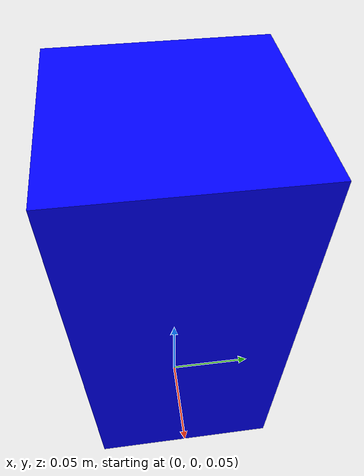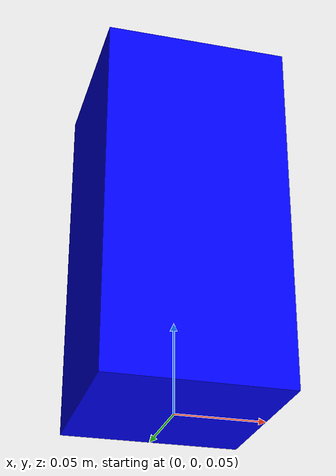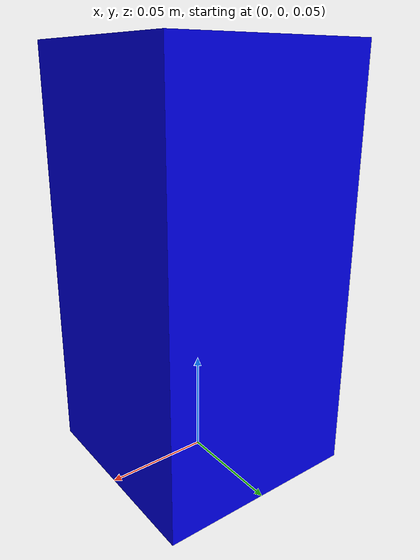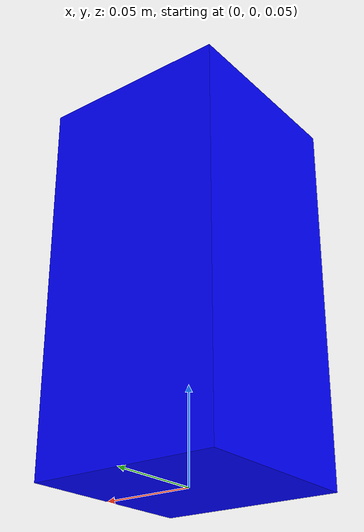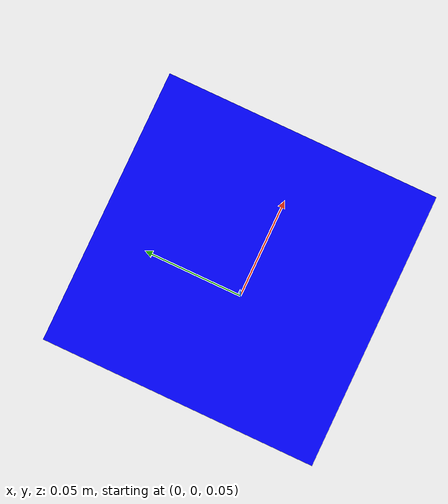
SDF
<?xml version="1.0"?>
<sdf version="1.7">
  <model name="box">
    <link name="box">
      <inertial>
        <mass>1</mass>
        <inertia>
            <ixx>0.0041666666666666675</ixx> <ixy>0.0</ixy> <ixz>0.0</ixz> <iyy>0.0041666666666666675 </iyy> <iyz>0.0</iyz> <izz>0.001666666666666667</izz>
        </inertia>
      </inertial>
      <visual name="visual">
        <pose>0 0 0.15 0 0 0</pose>
        <geometry>
          <box>
            <size>0.1 0.1 0.2</size>
          </box>
        </geometry>
        <material>
            <ambient>0 0 1 1</ambient><diffuse>0 0 1 1</diffuse><emissive>0 0 1 1</emissive>
        </material>
      </visual>
      <collision name="collision">
        <pose>0 0 0.15 0 0 0</pose>
        <geometry>
          <box>
            <size>0.1 0.1 0.2</size>
          </box>
        </geometry>
      </collision>
    </link>
  </model>
</sdf>
